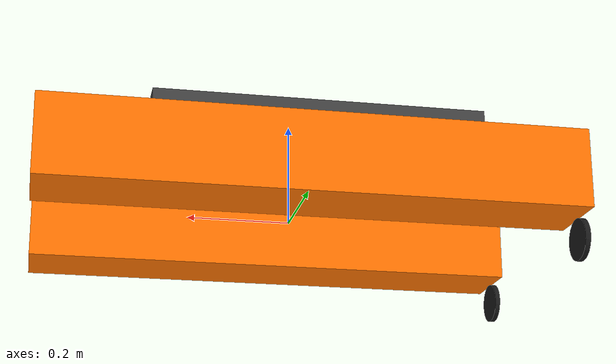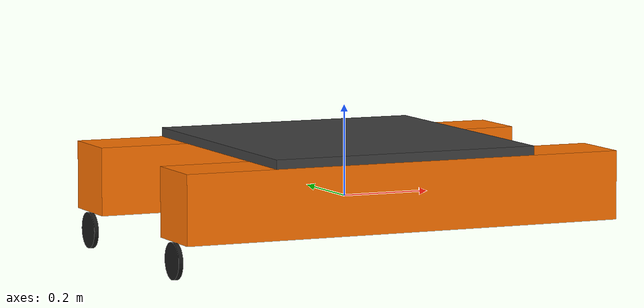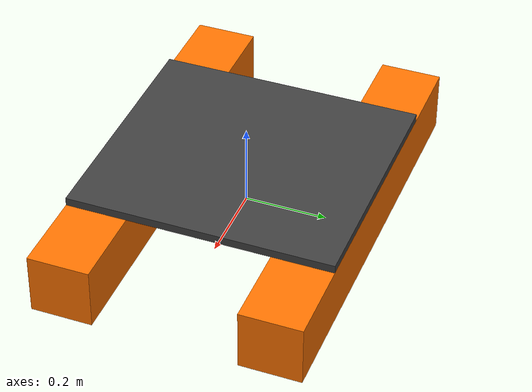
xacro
<?xml version="1.0"?>
<robot xmlns:xacro="http://ros.org/wiki/xacro" name="tutorial_usv">

  <!-- Every dimension, shared with the Gazebo model (a relative include:
       the package is not in the index yet when the build expands this). -->
  <xacro:include filename="dimensions.xacro"/>

  <material name="hull">
    <color rgba="1.0 0.45 0.0 1.0"/>
  </material>
  <material name="deck">
    <color rgba="0.25 0.25 0.25 1.0"/>
  </material>
  <material name="propeller">
    <color rgba="0.1 0.1 0.1 1.0"/>
  </material>

  <!-- ===================== base_link ===================== -->
  <xacro:macro name="hull" params="side y">
    <visual name="hull_${side}">
      <origin xyz="0 ${y} ${hull_z}" rpy="0 0 0"/>
      <geometry>
        <box size="${hull_length} ${hull_width} ${hull_height}"/>
      </geometry>
      <material name="hull"/>
    </visual>
    <collision name="hull_${side}">
      <origin xyz="0 ${y} ${hull_z}" rpy="0 0 0"/>
      <geometry>
        <box size="${hull_length} ${hull_width} ${hull_height}"/>
      </geometry>
    </collision>
  </xacro:macro>

  <link name="base_link">
    <!-- The mass modelled as two uniform solid hulls: each hull's own box
         inertia plus the parallel-axis term for its offset from the centre
         line. -->
    <inertial>
      <origin xyz="0 0 ${hull_z}" rpy="0 0 0"/>
      <mass value="${base_mass}"/>
      <inertia
        ixx="${base_mass * ((hull_width**2 + hull_height**2) / 12 + (hull_spacing / 2)**2)}"
        iyy="${base_mass * (hull_length**2 + hull_height**2) / 12}"
        izz="${base_mass * ((hull_length**2 + hull_width**2) / 12 + (hull_spacing / 2)**2)}"
        ixy="0" ixz="0" iyz="0"/>
    </inertial>
    <xacro:hull side="port" y="${hull_spacing / 2}"/>
    <xacro:hull side="stbd" y="${-hull_spacing / 2}"/>
    <visual name="deck">
      <origin xyz="0 0 ${deck_z}" rpy="0 0 0"/>
      <geometry>
        <box size="${deck_length} ${hull_spacing + hull_width} ${deck_thickness}"/>
      </geometry>
      <material name="deck"/>
    </visual>
  </link>

  <!-- ===================== Propellers ===================== -->
  <xacro:macro name="propeller" params="side y">
    <link name="motor_${side}">
      <inertial>
        <origin xyz="0 0 0" rpy="0 0 0"/>
        <mass value="${prop_mass}"/>
        <!-- A thin disc spinning about x. -->
        <inertia
          ixx="${prop_mass * (prop_diameter / 2)**2 / 2}"
          iyy="${prop_mass * (3 * (prop_diameter / 2)**2 + prop_thickness**2) / 12}"
          izz="${prop_mass * (3 * (prop_diameter / 2)**2 + prop_thickness**2) / 12}"
          ixy="0" ixz="0" iyz="0"/>
      </inertial>
      <visual>
        <!-- A cylinder's axis is z; pitch it onto x. -->
        <origin xyz="0 0 0" rpy="0 ${pi / 2} 0"/>
        <geometry>
          <cylinder radius="${prop_diameter / 2}" length="${prop_thickness}"/>
        </geometry>
        <material name="propeller"/>
      </visual>
    </link>
    <joint name="motor_${side}_joint" type="continuous">
      <parent link="base_link"/>
      <child link="motor_${side}"/>
      <origin xyz="${prop_x} ${y} ${prop_z}" rpy="0 0 0"/>
      <axis xyz="1 0 0"/>
    </joint>
  </xacro:macro>

  <xacro:propeller side="port" y="${hull_spacing / 2}"/>
  <xacro:propeller side="stbd" y="${-hull_spacing / 2}"/>

  <!-- ===================== Sensor frames ===================== -->
  <link name="imu_link"/>
  <joint name="imu_joint" type="fixed">
    <parent link="base_link"/>
    <child link="imu_link"/>
    <origin xyz="0 0 ${deck_z + deck_thickness / 2}" rpy="0 0 0"/>
  </joint>

  <link name="gps_link"/>
  <joint name="gps_joint" type="fixed">
    <parent link="base_link"/>
    <child link="gps_link"/>
    <origin xyz="${-deck_length / 2 + 0.05} 0 ${deck_z + 0.25}" rpy="0 0 0"/>
  </joint>

</robot>

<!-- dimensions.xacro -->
<robot xmlns:xacro="http://ros.org/wiki/xacro">

  <!-- Mass of the rigid hull and deck; the propellers add their own. -->
  <xacro:property name="base_mass" value="12.0"/>
  <!-- Two box hulls; hull_spacing is centre to centre. -->
  <xacro:property name="hull_length" value="1.0"/>
  <xacro:property name="hull_width" value="0.15"/>
  <xacro:property name="hull_height" value="0.15"/>
  <xacro:property name="hull_spacing" value="0.5"/>
  <!-- Deck plate bridging the hulls; visual only. -->
  <xacro:property name="deck_length" value="0.6"/>
  <xacro:property name="deck_thickness" value="0.02"/>
  <!-- Propellers. -->
  <xacro:property name="prop_diameter" value="0.08"/>
  <xacro:property name="prop_thickness" value="0.01"/>
  <xacro:property name="prop_mass" value="0.05"/>
  <!-- Seawater, as in the gz-maritime open_water world. -->
  <xacro:property name="water_density" value="1025.0"/>

  <!-- ===================== Derived ===================== -->
  <!-- Draft: the depth at which the two hulls displace the whole boat's
       weight, mass / (density * waterplane area). About 4 cm here. -->
  <xacro:property name="total_mass" value="${base_mass + 2 * prop_mass}"/>
  <xacro:property name="draft"
                  value="${total_mass / (water_density * 2 * hull_length * hull_width)}"/>
  <!-- Hull centre height: the hull bottoms sit one draft below base_link,
       which puts base_link's origin on the design waterline. -->
  <xacro:property name="hull_z" value="${hull_height / 2 - draft}"/>
  <xacro:property name="deck_z" value="${hull_z + hull_height / 2 + deck_thickness / 2}"/>
  <!-- Propellers just below the stern of each hull. -->
  <xacro:property name="prop_x" value="${-hull_length / 2}"/>
  <xacro:property name="prop_z" value="${hull_z - hull_height / 2 - prop_diameter / 2}"/>

</robot>
